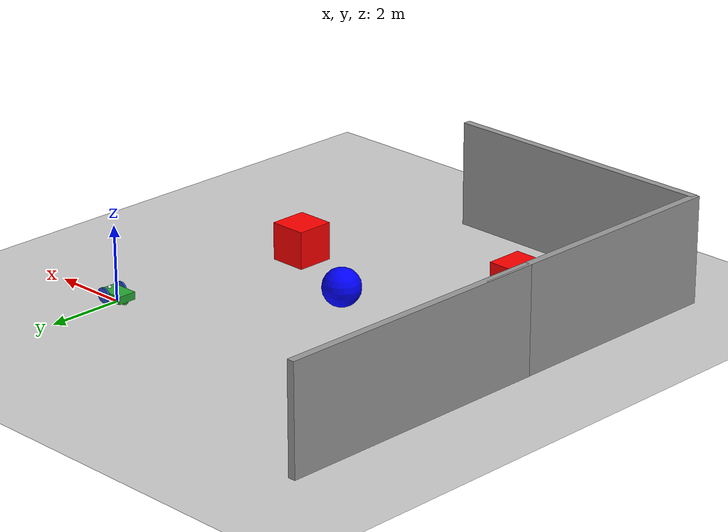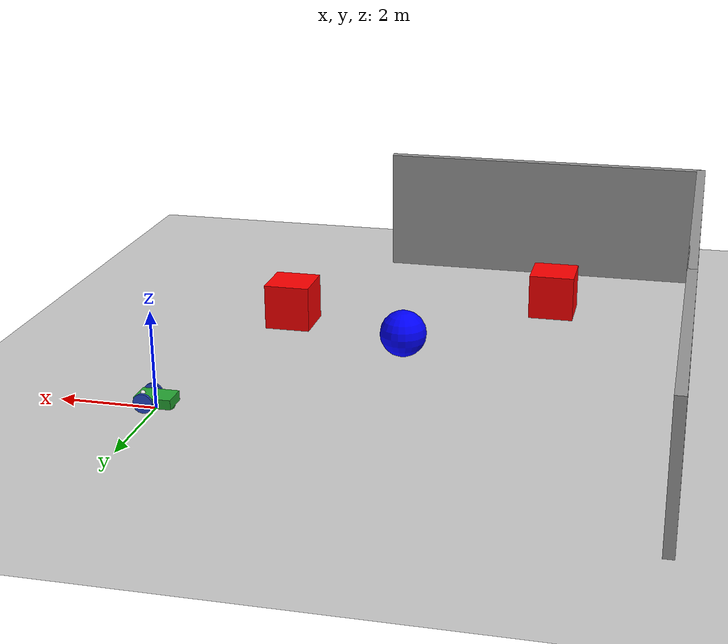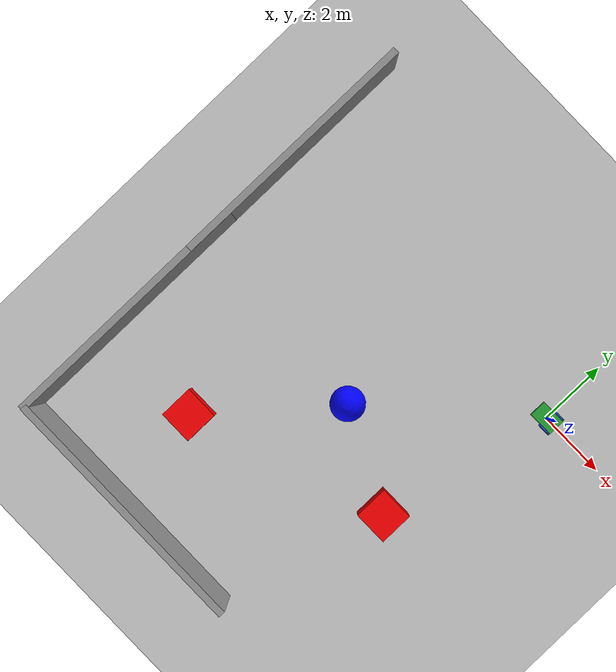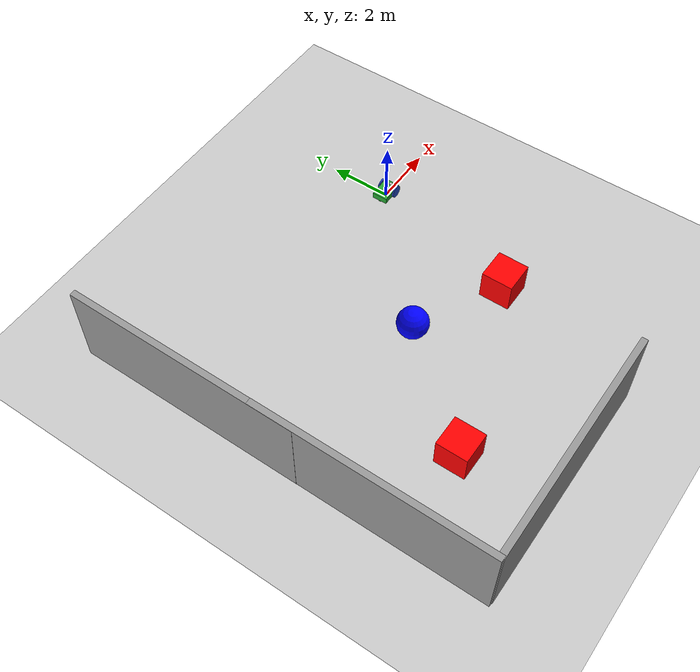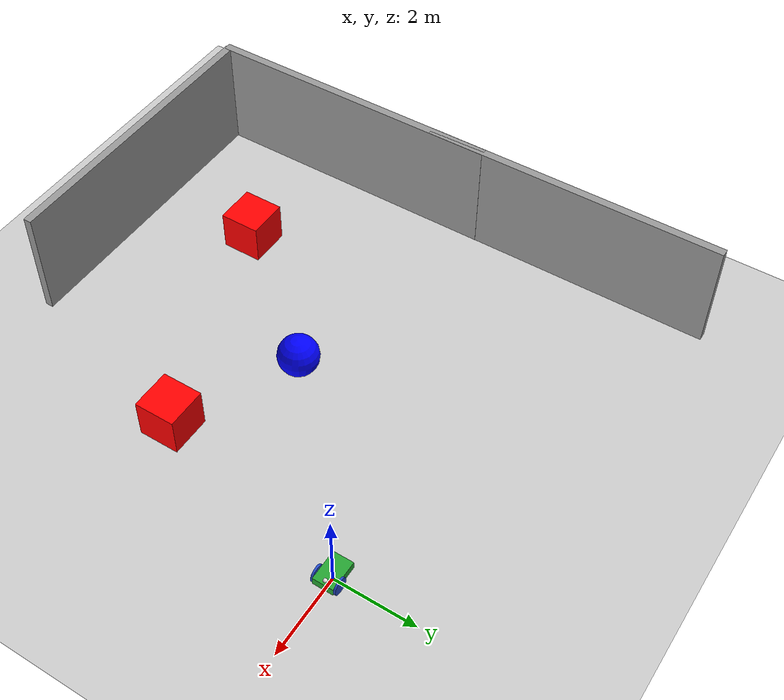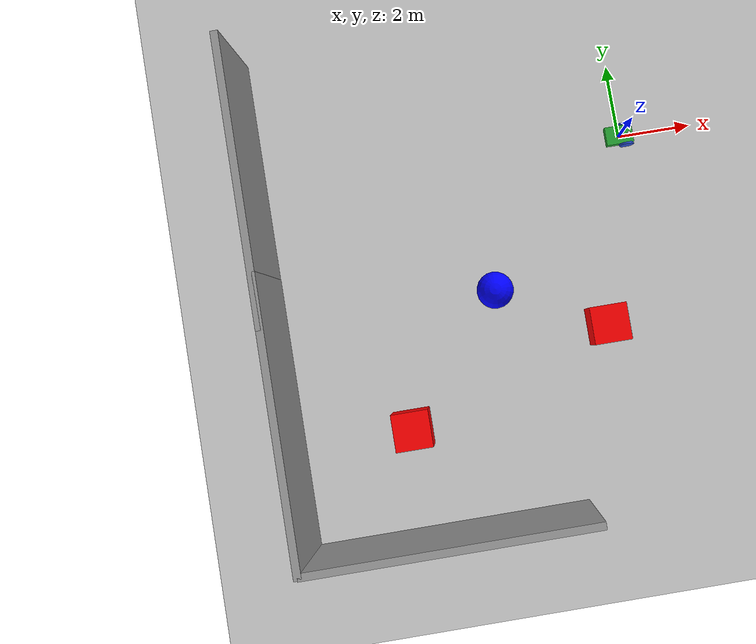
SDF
<sdf version="1.6">
 <world name="default">
  <model name="ground_plane">
   <static>1</static>
   <link name="link">
    <collision name="collision">
     <geometry><plane><normal>0 0 1</normal><size>100 100</size></plane></geometry>
     <surface>
      <contact><collide_bitmask>65535</collide_bitmask></contact>
      <friction><ode><mu>100</mu><mu2>50</mu2></ode></friction>
     </surface>
    </collision>
    <visual name="visual">
     <cast_shadows>0</cast_shadows>
     <geometry><plane><normal>0 0 1</normal><size>100 100</size></plane></geometry>
     <material>
      <script><uri>file://media/materials/scripts/gazebo.material</uri><name>Gazebo/Grey</name></script>
     </material>
    </visual>
   </link>
  </model>
  <model name="mybot">
   <link name="base_link">
    <inertial>
     <pose>-0.024456 0 0.191107 0 -0 0</pose>
     <mass>55.1</mass>
     <inertia>
      <ixx>1.27502</ixx>
      <ixy>0</ixy>
      <ixz>-0.128267</ixz>
      <iyy>2.92983</iyy>
      <iyz>0</iyz>
      <izz>2.88319</izz>
     </inertia>
    </inertial>
    <collision name="base_link_fixed_joint_lump__chassis_collision">
     <pose>0 0 0.2 0 -0 0</pose>
     <geometry><box><size>0.75 0.5 0.2</size></box></geometry>
    </collision>
    <collision name="base_link_fixed_joint_lump__camera_collision_1">
     <pose>0.275 0 0.3 0 -0 0</pose>
     <geometry><sphere><radius>0.05</radius></sphere></geometry>
    </collision>
    <collision name="base_link_fixed_joint_lump__caster_wheel_collision_2">
     <pose>-0.275 0 0.1 0 -0 0</pose>
     <geometry><sphere><radius>0.1</radius></sphere></geometry>
     <surface><friction><ode><mu>0</mu><mu2>0</mu2></ode></friction></surface>
    </collision>
    <visual name="base_link_fixed_joint_lump__chassis_visual">
     <pose>0 0 0.2 0 -0 0</pose>
     <geometry><box><size>0.75 0.5 0.2</size></box></geometry>
     <material>
      <script><name>Gazebo/Green</name><uri>file://media/materials/scripts/gazebo.material</uri></script>
     </material>
    </visual>
    <visual name="base_link_fixed_joint_lump__camera_visual_1">
     <pose>0.275 0 0.3 0 -0 0</pose>
     <geometry><sphere><radius>0.05</radius></sphere></geometry>
     <material>
      <script><name>Gazebo/White</name><uri>file://media/materials/scripts/gazebo.material</uri></script>
     </material>
    </visual>
    <visual name="base_link_fixed_joint_lump__caster_wheel_visual_2">
     <pose>-0.275 0 0.1 0 -0 0</pose>
     <geometry><sphere><radius>0.1</radius></sphere></geometry>
     <material>
      <script><name>Gazebo/Green</name><uri>file://media/materials/scripts/gazebo.material</uri></script>
     </material>
    </visual>
    <sensor name="camera1" type="camera">
     <update_rate>30</update_rate>
     <camera name="head">
      <horizontal_fov>1.39626</horizontal_fov>
      <image><width>640</width><height>320</height><format>R8G8B8</format></image>
      <clip><near>0.02</near><far>300</far></clip>
      <noise><type>gaussian</type><mean>0</mean><stddev>0.007</stddev></noise>
     </camera>
     <plugin name="camera_controller" filename="libgazebo_ros_camera.so">
      <alwaysOn>1</alwaysOn>
      <updateRate>0.0</updateRate>
      <cameraName>mybot/camera</cameraName>
      <imageTopicName>image_raw</imageTopicName>
      <cameraInfoTopicName>camera_info</cameraInfoTopicName>
      <frameName>camera</frameName>
      <hackBaseline>0.07</hackBaseline>
      <distortionK1>0.0</distortionK1>
      <distortionK2>0.0</distortionK2>
      <distortionK3>0.0</distortionK3>
      <distortionT1>0.0</distortionT1>
      <distortionT2>0.0</distortionT2>
      <robotNamespace>/</robotNamespace>
     </plugin>
     <pose>0.275 0 0.3 0 -0 0</pose>
    </sensor>
   </link>
   <link name="left_wheel">
    <pose>0.175 0.275 0.2 0 -0 0</pose>
    <inertial>
     <pose>0 0 0 1.57079 1.57079 3.14159</pose>
     <mass>5</mass>
     <inertia><ixx>0.0510417</ixx><ixy>0</ixy><ixz>0</ixz><iyy>0.0510417</iyy><iyz>0</iyz><izz>0.1</izz></inertia>
    </inertial>
    <collision name="left_wheel_collision">
     <pose>0 0 0 3.14159 1.57079 -1.57079</pose>
     <geometry><cylinder><length>0.05</length><radius>0.2</radius></cylinder></geometry>
     <surface>
      <contact><ode><kp>1e+07</kp><kd>1</kd></ode></contact>
      <friction><ode><mu>200</mu><mu2>100</mu2></ode></friction>
     </surface>
    </collision>
    <visual name="left_wheel_visual">
     <pose>0 0 0 3.14159 1.57079 -1.57079</pose>
     <geometry><cylinder><length>0.05</length><radius>0.2</radius></cylinder></geometry>
     <material>
      <script><name>Gazebo/Blue</name><uri>file://media/materials/scripts/gazebo.material</uri></script>
     </material>
    </visual>
   </link>
   <joint name="left_wheel_hinge" type="revolute">
    <child>left_wheel</child>
    <parent>base_link</parent>
    <axis>
     <xyz>0 1 0</xyz>
     <limit><lower>-1e+16</lower><upper>1e+16</upper></limit>
     <dynamics><spring_reference>0</spring_reference><spring_stiffness>0</spring_stiffness></dynamics>
     <use_parent_model_frame>1</use_parent_model_frame>
    </axis>
   </joint>
   <link name="right_wheel">
    <pose>0.175 -0.275 0.2 0 -0 0</pose>
    <inertial>
     <pose>0 0 0 1.57079 1.57079 3.14159</pose>
     <mass>5</mass>
     <inertia><ixx>0.0510417</ixx><ixy>0</ixy><ixz>0</ixz><iyy>0.0510417</iyy><iyz>0</iyz><izz>0.1</izz></inertia>
    </inertial>
    <collision name="right_wheel_collision">
     <pose>0 0 0 3.14159 1.57079 -1.57079</pose>
     <geometry><cylinder><length>0.05</length><radius>0.2</radius></cylinder></geometry>
     <surface>
      <contact><ode><kp>1e+07</kp><kd>1</kd></ode></contact>
      <friction><ode><mu>200</mu><mu2>100</mu2></ode></friction>
     </surface>
    </collision>
    <visual name="right_wheel_visual">
     <pose>0 0 0 3.14159 1.57079 -1.57079</pose>
     <geometry><cylinder><length>0.05</length><radius>0.2</radius></cylinder></geometry>
     <material>
      <script><name>Gazebo/Blue</name><uri>file://media/materials/scripts/gazebo.material</uri></script>
     </material>
    </visual>
   </link>
   <joint name="right_wheel_hinge" type="revolute">
    <child>right_wheel</child>
    <parent>base_link</parent>
    <axis>
     <xyz>0 1 0</xyz>
     <limit><lower>-1e+16</lower><upper>1e+16</upper></limit>
     <dynamics><spring_reference>0</spring_reference><spring_stiffness>0</spring_stiffness></dynamics>
     <use_parent_model_frame>1</use_parent_model_frame>
    </axis>
   </joint>
   <plugin name="gazebo_control" filename="libgazebo_ros_control.so">
    <robotNamespace>/</robotNamespace>
    <robotSimType>gazebo_ros_control/DefaultRobotHWSim</robotSimType>
    <legacyModeNS>1</legacyModeNS>
   </plugin>
   <static>0</static>
   <plugin name="differential_drive_controller" filename="libgazebo_ros_diff_drive.so">
    <alwaysOn>1</alwaysOn>
    <updateRate>100</updateRate>
    <leftJoint>left_wheel_hinge</leftJoint>
    <rightJoint>right_wheel_hinge</rightJoint>
    <wheelSeparation>0.55</wheelSeparation>
    <wheelDiameter>0.4</wheelDiameter>
    <broadcastTF>1</broadcastTF>
    <wheelTorque>30</wheelTorque>
    <wheelAcceleration>1.8</wheelAcceleration>
    <commandTopic>cmd_vel</commandTopic>
    <odometryFrame>odom</odometryFrame>
    <odometryTopic>odom</odometryTopic>
    <rosDebugLevel>Debug</rosDebugLevel>
    <publishWheelTF>0</publishWheelTF>
    <robotNamespace>/</robotNamespace>
    <publishTf>1</publishTf>
    <publishWheelJointState>0</publishWheelJointState>
    <robotBaseFrame>base_link</robotBaseFrame>
   </plugin>
   <pose>-0.019093 -0.000178 -6e-06 0 2.1e-05 0.000967</pose>
  </model>
  <model name="grey_wall_2">
   <static>1</static>
   <link name="link">
    <pose>0 0 1.4 0 -0 0</pose>
    <collision name="collision"><geometry><box><size>7.5 0.2 2.8</size></box></geometry></collision>
    <visual name="visual">
     <cast_shadows>0</cast_shadows>
     <geometry><box><size>7.5 0.2 2.8</size></box></geometry>
     <material>
      <script>
       <uri>model://grey_wall/materials/scripts</uri>
       <uri>model://grey_wall/materials/textures</uri>
       <name>vrc/grey_wall</name>
      </script>
     </material>
    </visual>
   </link>
   <pose>-6.25339 -9.82244 0 0 -0 0</pose>
  </model>
  <model name="grey_wall_5_90_rotated_3">
   <link name="link">
    <pose>0 0 1.4 0 -0 0</pose>
    <visual name="visual">
     <cast_shadows>0</cast_shadows>
     <geometry><box><size>7.5 0.2 2.8</size></box></geometry>
     <material>
      <script>
       <uri>model://grey_wall/materials/scripts</uri>
       <uri>model://grey_wall/materials/textures</uri>
       <name>vrc/grey_wall</name>
      </script>
     </material>
    </visual>
    <collision name="collision">
     <geometry><box><size>7.5 0.2 2.8</size></box></geometry>
     <surface>
      <friction>
       <ode><mu>1</mu><mu2>1</mu2><fdir1>0 0 0</fdir1><slip1>0</slip1><slip2>0</slip2></ode>
       <torsional>
        <coefficient>1</coefficient>
        <patch_radius>0</patch_radius>
        <surface_radius>0</surface_radius>
        <use_patch_radius>1</use_patch_radius>
        <ode><slip>0</slip></ode>
       </torsional>
      </friction>
      <bounce><restitution_coefficient>0</restitution_coefficient><threshold>1e+06</threshold></bounce>
      <contact>
       <collide_without_contact>0</collide_without_contact>
       <collide_without_contact_bitmask>1</collide_without_contact_bitmask>
       <collide_bitmask>1</collide_bitmask>
       <ode>
        <soft_cfm>0</soft_cfm>
        <soft_erp>0.2</soft_erp>
        <kp>1e+13</kp>
        <kd>1</kd>
        <max_vel>0.01</max_vel>
        <min_depth>0</min_depth>
       </ode>
       <bullet>
        <split_impulse>1</split_impulse>
        <split_impulse_penetration_threshold>-0.01</split_impulse_penetration_threshold>
        <soft_cfm>0</soft_cfm>
        <soft_erp>0.2</soft_erp>
        <kp>1e+13</kp>
        <kd>1</kd>
       </bullet>
      </contact>
     </surface>
    </collision>
   </link>
   <static>1</static>
   <pose>-10 -0.098968 0 0 -0 1.57</pose>
  </model>
  <model name="grey_wall_5_90_rotated_4">
   <link name="link">
    <pose>0 0 1.4 0 -0 0</pose>
    <visual name="visual">
     <cast_shadows>0</cast_shadows>
     <geometry><box><size>7.5 0.2 2.8</size></box></geometry>
     <material>
      <script>
       <uri>model://grey_wall/materials/scripts</uri>
       <uri>model://grey_wall/materials/textures</uri>
       <name>vrc/grey_wall</name>
      </script>
     </material>
    </visual>
    <collision name="collision">
     <geometry><box><size>7.5 0.2 2.8</size></box></geometry>
     <surface>
      <friction>
       <ode><mu>1</mu><mu2>1</mu2><fdir1>0 0 0</fdir1><slip1>0</slip1><slip2>0</slip2></ode>
       <torsional>
        <coefficient>1</coefficient>
        <patch_radius>0</patch_radius>
        <surface_radius>0</surface_radius>
        <use_patch_radius>1</use_patch_radius>
        <ode><slip>0</slip></ode>
       </torsional>
      </friction>
      <bounce><restitution_coefficient>0</restitution_coefficient><threshold>1e+06</threshold></bounce>
      <contact>
       <collide_without_contact>0</collide_without_contact>
       <collide_without_contact_bitmask>1</collide_without_contact_bitmask>
       <collide_bitmask>1</collide_bitmask>
       <ode>
        <soft_cfm>0</soft_cfm>
        <soft_erp>0.2</soft_erp>
        <kp>1e+13</kp>
        <kd>1</kd>
        <max_vel>0.01</max_vel>
        <min_depth>0</min_depth>
       </ode>
       <bullet>
        <split_impulse>1</split_impulse>
        <split_impulse_penetration_threshold>-0.01</split_impulse_penetration_threshold>
        <soft_cfm>0</soft_cfm>
        <soft_erp>0.2</soft_erp>
        <kp>1e+13</kp>
        <kd>1</kd>
       </bullet>
      </contact>
     </surface>
    </collision>
   </link>
   <static>1</static>
   <pose>-10 -6.15 0 0 -0 1.57</pose>
  </model>
  <model name="unit_sphere_blue_2">
   <link name="link_2">
    <inertial>
     <mass>1</mass>
     <inertia><ixx>0.1</ixx><ixy>0</ixy><ixz>0</ixz><iyy>0.1</iyy><iyz>0</iyz><izz>0.1</izz></inertia>
    </inertial>
    <pose>-0.012036 0.119402 0 0 -0 0</pose>
    <visual name="visual">
     <geometry><sphere><radius>0.5</radius></sphere></geometry>
     <material>
      <lighting>1</lighting>
      <script><uri>file://media/materials/scripts/gazebo.material</uri><name>Gazebo/Grey</name></script>
      <ambient>0 0 1 0</ambient>
      <shader type="vertex"><normal_map>__default__</normal_map></shader>
      <diffuse>0.7 0.7 0.7 1</diffuse>
      <specular>0.01 0.01 0.01 1</specular>
      <emissive>0 0 0 1</emissive>
     </material>
    </visual>
    <collision name="collision">
     <geometry><sphere><radius>0.5</radius></sphere></geometry>
     <surface>
      <friction>
       <ode><mu>1</mu><mu2>1</mu2><fdir1>0 0 0</fdir1><slip1>0</slip1><slip2>0</slip2></ode>
       <torsional>
        <coefficient>1</coefficient>
        <patch_radius>0</patch_radius>
        <surface_radius>0</surface_radius>
        <use_patch_radius>1</use_patch_radius>
        <ode><slip>0</slip></ode>
       </torsional>
      </friction>
      <bounce><restitution_coefficient>0</restitution_coefficient><threshold>1e+06</threshold></bounce>
      <contact>
       <collide_without_contact>0</collide_without_contact>
       <collide_without_contact_bitmask>1</collide_without_contact_bitmask>
       <collide_bitmask>1</collide_bitmask>
       <ode>
        <soft_cfm>0</soft_cfm>
        <soft_erp>0.2</soft_erp>
        <kp>1e+13</kp>
        <kd>1</kd>
        <max_vel>0.01</max_vel>
        <min_depth>0</min_depth>
       </ode>
       <bullet>
        <split_impulse>1</split_impulse>
        <split_impulse_penetration_threshold>-0.01</split_impulse_penetration_threshold>
        <soft_cfm>0</soft_cfm>
        <soft_erp>0.2</soft_erp>
        <kp>1e+13</kp>
        <kd>1</kd>
       </bullet>
      </contact>
     </surface>
    </collision>
   </link>
   <static>0</static>
   <pose>-4.09925 -3.80718 0.5 0 -0 0</pose>
  </model>
  <model name="unit_box_red_5">
   <link name="link">
    <inertial>
     <mass>1</mass>
     <inertia>
      <ixx>0.166667</ixx>
      <ixy>0</ixy>
      <ixz>0</ixz>
      <iyy>0.166667</iyy>
      <iyz>0</iyz>
      <izz>0.166667</izz>
     </inertia>
    </inertial>
    <visual name="visual">
     <geometry><box><size>1 1 1</size></box></geometry>
     <material>
      <script><name>Gazebo/Grey</name><uri>file://media/materials/scripts/gazebo.material</uri></script>
      <ambient>1 0 0 0</ambient>
      <shader type="vertex"><normal_map>__default__</normal_map></shader>
      <diffuse>0.7 0.7 0.7 1</diffuse>
      <specular>0.01 0.01 0.01 1</specular>
      <emissive>0 0 0 1</emissive>
     </material>
    </visual>
    <collision name="collision">
     <geometry><box><size>1 1 1</size></box></geometry>
     <surface>
      <friction>
       <ode><mu>1</mu><mu2>1</mu2><fdir1>0 0 0</fdir1><slip1>0</slip1><slip2>0</slip2></ode>
       <torsional>
        <coefficient>1</coefficient>
        <patch_radius>0</patch_radius>
        <surface_radius>0</surface_radius>
        <use_patch_radius>1</use_patch_radius>
        <ode><slip>0</slip></ode>
       </torsional>
      </friction>
      <bounce><restitution_coefficient>0</restitution_coefficient><threshold>1e+06</threshold></bounce>
      <contact>
       <collide_without_contact>0</collide_without_contact>
       <collide_without_contact_bitmask>1</collide_without_contact_bitmask>
       <collide_bitmask>1</collide_bitmask>
       <ode>
        <soft_cfm>0</soft_cfm>
        <soft_erp>0.2</soft_erp>
        <kp>1e+13</kp>
        <kd>1</kd>
        <max_vel>0.01</max_vel>
        <min_depth>0</min_depth>
       </ode>
       <bullet>
        <split_impulse>1</split_impulse>
        <split_impulse_penetration_threshold>-0.01</split_impulse_penetration_threshold>
        <soft_cfm>0</soft_cfm>
        <soft_erp>0.2</soft_erp>
        <kp>1e+13</kp>
        <kd>1</kd>
       </bullet>
      </contact>
     </surface>
    </collision>
   </link>
   <static>0</static>
   <pose>-6.9033 -7.01292 0.5 0 -0 0</pose>
  </model>
  <model name="unit_box_red_6">
   <link name="link">
    <inertial>
     <mass>1</mass>
     <inertia>
      <ixx>0.166667</ixx>
      <ixy>0</ixy>
      <ixz>0</ixz>
      <iyy>0.166667</iyy>
      <iyz>0</iyz>
      <izz>0.166667</izz>
     </inertia>
    </inertial>
    <visual name="visual">
     <geometry><box><size>1 1 1</size></box></geometry>
     <material>
      <script><name>Gazebo/Grey</name><uri>file://media/materials/scripts/gazebo.material</uri></script>
      <ambient>1 0 0 0</ambient>
      <shader type="vertex"><normal_map>__default__</normal_map></shader>
      <diffuse>0.7 0.7 0.7 1</diffuse>
      <specular>0.01 0.01 0.01 1</specular>
      <emissive>0 0 0 1</emissive>
     </material>
    </visual>
    <collision name="collision">
     <geometry><box><size>1 1 1</size></box></geometry>
     <surface>
      <friction>
       <ode><mu>1</mu><mu2>1</mu2><fdir1>0 0 0</fdir1><slip1>0</slip1><slip2>0</slip2></ode>
       <torsional>
        <coefficient>1</coefficient>
        <patch_radius>0</patch_radius>
        <surface_radius>0</surface_radius>
        <use_patch_radius>1</use_patch_radius>
        <ode><slip>0</slip></ode>
       </torsional>
      </friction>
      <bounce><restitution_coefficient>0</restitution_coefficient><threshold>1e+06</threshold></bounce>
      <contact>
       <collide_without_contact>0</collide_without_contact>
       <collide_without_contact_bitmask>1</collide_without_contact_bitmask>
       <collide_bitmask>1</collide_bitmask>
       <ode>
        <soft_cfm>0</soft_cfm>
        <soft_erp>0.2</soft_erp>
        <kp>1e+13</kp>
        <kd>1</kd>
        <max_vel>0.01</max_vel>
        <min_depth>0</min_depth>
       </ode>
       <bullet>
        <split_impulse>1</split_impulse>
        <split_impulse_penetration_threshold>-0.01</split_impulse_penetration_threshold>
        <soft_cfm>0</soft_cfm>
        <soft_erp>0.2</soft_erp>
        <kp>1e+13</kp>
        <kd>1</kd>
       </bullet>
      </contact>
     </surface>
    </collision>
   </link>
   <static>0</static>
   <pose>-1.25826 -5.08352 0.5 0 -0 0</pose>
  </model>
 </world>
</sdf>
